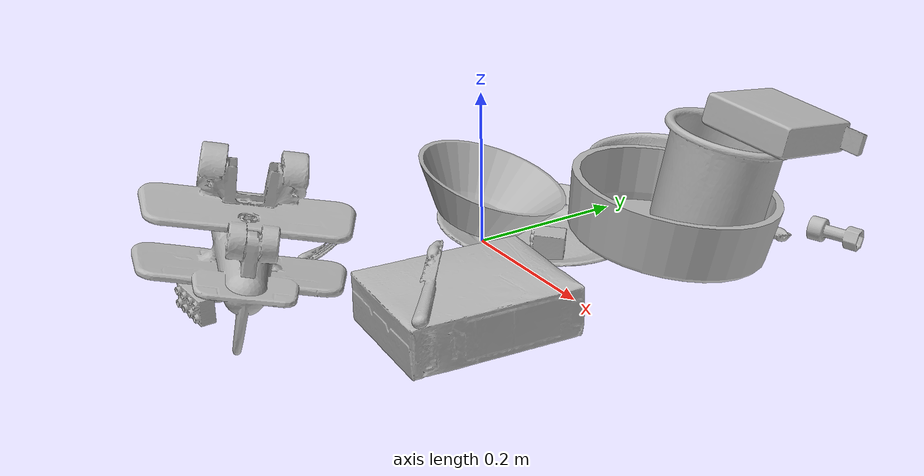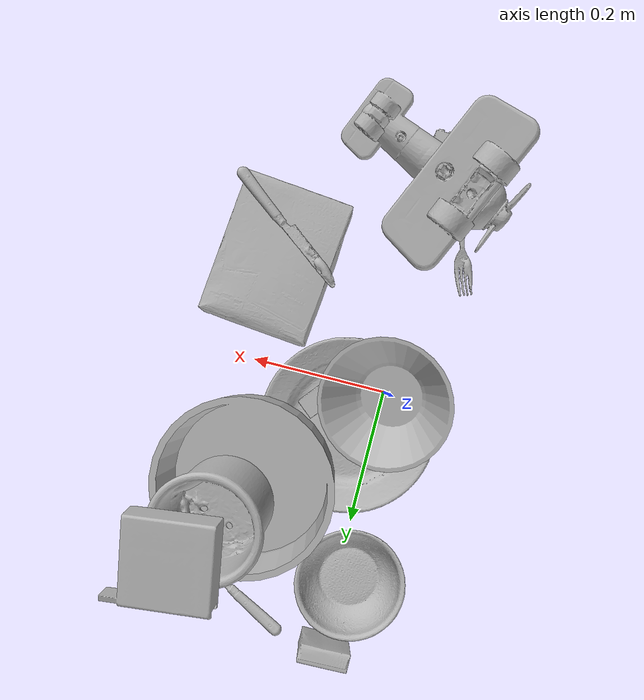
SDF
<sdf version="1.4">
  <world name="default">
    <light name="light1" type="point">
      <pose>0 0 1 0 0 0</pose>
      <diffuse>3 3 3 1</diffuse>
      <specular>3 3 3 1</specular>
    </light>
    <light name="light2" type="point">
      <pose>0 0.5 2 0 0 0</pose>
      <diffuse>1 1 1 1</diffuse>
      <specular>1 1 1 1</specular>
    </light>
    <light name="light3" type="point">
      <pose>0 0.5 2 0 0 0</pose>
      <diffuse>3 3 3 1</diffuse>
      <specular>3 3 3 1</specular>
    </light>
    <scene>
      <ambient>0.7 0.7 0.7</ambient>
    </scene>
    <model name="plate1">
      <link name="link_plate1">
        <collision name="default">
          <geometry>
            <mesh>
              <uri>model://plate/collision_meshes/collision.obj</uri>
              <scale>1.0 1.0 1.0</scale>
            </mesh>
          </geometry>
          <surface>
            <friction>
              <ode>
                <mu>0.5</mu>
                <mu2>0.5</mu2>
              </ode>
            </friction>
          <contact>
        <ode>
            <max_vel>0</max_vel>
            <min_depth>0.0001</min_depth>
            <kp>1e8</kp>
        </ode>
    </contact></surface>
        </collision>
        <visual name="default">
          <geometry>
            <mesh>
              <uri>model://plate/visual_meshes/visual.dae</uri>
              <scale>1.0 1.0 1.0</scale>
            </mesh>
          </geometry>
        </visual>
        <inertial>
          <mass>0.1516857147216797</mass>
          <pose>-0.0006044649053364992 0.00027825761935673654 -0.0010561972158029675 0.002218765199568956 -0.003225488596237322 0.4526153800388047</pose>
          <inertia>
            <ixx>0.00070958876</ixx>
            <iyy>0.0007028018</iyy>
            <izz>0.00138785</izz>
            <ixy>0</ixy>
            <ixz>0</ixz>
            <iyz>0</iyz>
          </inertia>
        </inertial>
      </link>
      <pose>0.04005948826670647 0.059680063277482986 0.01837826706469059 0.013791375002708607 0.06813879909102033 1.2415685722663798</pose>
    </model>
    <model name="plate2">
      <link name="link_plate2">
        <collision name="default">
          <geometry>
            <mesh>
              <uri>model://pan_tefal/collision_meshes/collision.obj</uri>
              <scale>1.0 1.0 1.0</scale>
            </mesh>
          </geometry>
          <surface>
            <friction>
              <ode>
                <mu>0.5</mu>
                <mu2>0.5</mu2>
              </ode>
            </friction>
          <contact>
        <ode>
            <max_vel>0</max_vel>
            <min_depth>0.0001</min_depth>
            <kp>1e8</kp>
        </ode>
    </contact></surface>
        </collision>
        <visual name="default">
          <geometry>
            <mesh>
              <uri>model://pan_tefal/visual_meshes/visual.dae</uri>
              <scale>1.0 1.0 1.0</scale>
            </mesh>
          </geometry>
        </visual>
        <inertial>
          <mass>1.0862284898757935</mass>
          <pose>-0.00018001910939347 3.2794348953757435e-05 -0.00851493515074253 0.0008190334899032376 -0.0003301482999058744 -0.3318501395419688</pose>
          <inertia>
            <ixx>0.0074981838</ixx>
            <iyy>0.007546525</iyy>
            <izz>0.013802713</izz>
            <ixy>0</ixy>
            <ixz>0</ixz>
            <iyz>0</iyz>
          </inertia>
        </inertial>
      </link>
      <pose>0.16239653527736664 0.17529895901679993 0.056534070521593094 -0.08781796131860266 0.14150609278339224 0.5350767931370202</pose>
    </model>
    <model name="bowl1">
      <link name="link_bowl1">
        <collision name="default">
          <geometry>
            <mesh>
              <uri>model://bowl_a/collision_meshes/collision.obj</uri>
              <scale>1.0 1.0 1.0</scale>
            </mesh>
          </geometry>
          <surface>
            <friction>
              <ode>
                <mu>0.5</mu>
                <mu2>0.5</mu2>
              </ode>
            </friction>
          <contact>
        <ode>
            <max_vel>0</max_vel>
            <min_depth>0.0001</min_depth>
            <kp>1e8</kp>
        </ode>
    </contact></surface>
        </collision>
        <visual name="default">
          <geometry>
            <mesh>
              <uri>model://bowl_a/visual_meshes/visual.dae</uri>
              <scale>1.0 1.0 1.0</scale>
            </mesh>
          </geometry>
        </visual>
        <inertial>
          <mass>0.23323877155780792</mass>
          <pose>0.0002786752884276211 4.7312129026977345e-05 -0.001376529224216938 -0.000980538139416196 -0.00109382495954127 -0.19123674059098103</pose>
          <inertia>
            <ixx>0.0006640416</ixx>
            <iyy>0.0006681184</iyy>
            <izz>0.0011810234</izz>
            <ixy>0</ixy>
            <ixz>0</ixz>
            <iyz>0</iyz>
          </inertia>
        </inertial>
      </link>
      <pose>-0.006078058388084173 0.009744756855070591 0.05626294016838074 0.15697373763869726 -0.2757705010686803 -2.765850158762176</pose>
    </model>
    <model name="bowl2">
      <link name="link_bowl2">
        <collision name="default">
          <geometry>
            <mesh>
              <uri>model://bowl/collision_meshes/collision.obj</uri>
              <scale>1.0 1.0 1.0</scale>
            </mesh>
          </geometry>
          <surface>
            <friction>
              <ode>
                <mu>0.5</mu>
                <mu2>0.5</mu2>
              </ode>
            </friction>
          <contact>
        <ode>
            <max_vel>0</max_vel>
            <min_depth>0.0001</min_depth>
            <kp>1e8</kp>
        </ode>
    </contact></surface>
        </collision>
        <visual name="default">
          <geometry>
            <mesh>
              <uri>model://bowl/visual_meshes/visual.dae</uri>
              <scale>1.0 1.0 1.0</scale>
            </mesh>
          </geometry>
        </visual>
        <inertial>
          <mass>0.08787161856889725</mass>
          <pose>0.00020445531117729843 -0.0010302038863301277 -0.0008042651461437345 -0.015764035308279474 0.014546860922519275 0.7140443952173783</pose>
          <inertia>
            <ixx>0.00020184812</ixx>
            <iyy>0.00019733804</iyy>
            <izz>0.00033957793</izz>
            <ixy>0</ixy>
            <ixz>0</ixz>
            <iyz>0</iyz>
          </inertia>
        </inertial>
      </link>
      <pose>-0.01883745566010475 0.28219735622406006 0.02778000384569168 -1.285341958964754e-07 9.011013879316535e-08 1.8626223135131015</pose>
    </model>
    <model name="silverware1">
      <link name="link_silverware1">
        <collision name="default">
          <geometry>
            <mesh>
              <uri>model://spoon/collision_meshes/collision.obj</uri>
              <scale>1.0 1.0 1.0</scale>
            </mesh>
          </geometry>
          <surface>
            <friction>
              <ode>
                <mu>0.5</mu>
                <mu2>0.5</mu2>
              </ode>
            </friction>
          <contact>
        <ode>
            <max_vel>0</max_vel>
            <min_depth>0.0001</min_depth>
            <kp>1e8</kp>
        </ode>
    </contact></surface>
        </collision>
        <visual name="default">
          <geometry>
            <mesh>
              <uri>model://spoon/visual_meshes/visual.dae</uri>
              <scale>1.0 1.0 1.0</scale>
            </mesh>
          </geometry>
        </visual>
        <inertial>
          <mass>0.028818774968385696</mass>
          <pose>-0.0055263228714466095 -0.0016034181462600827 -0.0007271657814271748 0.03521556092832266 -0.039065843026344464 0.006150610888934851</pose>
          <inertia>
            <ixx>1.6029475e-06</ixx>
            <iyy>0.0001096545</iyy>
            <izz>0.000110445</izz>
            <ixy>0</ixy>
            <ixz>0</ixz>
            <iyz>0</iyz>
          </inertia>
        </inertial>
      </link>
      <pose>0.14920932054519653 0.3440118730068207 0.00838526338338852 0.006731647057795463 0.02689299424970009 -0.48799114237414154</pose>
    </model>
    <model name="box1">
      <link name="link_box1">
        <collision name="default">
          <geometry>
            <mesh>
              <uri>model://cracker_box/collision_meshes/collision.obj</uri>
              <scale>1.0 1.0 1.0</scale>
            </mesh>
          </geometry>
          <surface>
            <friction>
              <ode>
                <mu>0.5</mu>
                <mu2>0.5</mu2>
              </ode>
            </friction>
          <contact>
        <ode>
            <max_vel>0</max_vel>
            <min_depth>0.0001</min_depth>
            <kp>1e8</kp>
        </ode>
    </contact></surface>
        </collision>
        <visual name="default">
          <geometry>
            <mesh>
              <uri>model://cracker_box/visual_meshes/visual.dae</uri>
              <scale>1.0 1.0 1.0</scale>
            </mesh>
          </geometry>
        </visual>
        <inertial>
          <mass>2.9781224727630615</mass>
          <pose>0.0009464174509048462 0.00025434247800149024 -0.0017029534792527556 -0.0003162077703261406 -0.01110649239447325 0.0025467938390949236</pose>
          <inertia>
            <ixx>0.007575013</ixx>
            <iyy>0.012507835</iyy>
            <izz>0.017849829</izz>
            <ixy>0</ixy>
            <ixz>0</ixz>
            <iyz>0</iyz>
          </inertia>
        </inertial>
      </link>
      <pose>0.2006835639476776 -0.14861592650413513 0.03553140163421631 3.1372011300454057 -0.016543792487366465 1.4763522759395904</pose>
    </model>
    <model name="box2">
      <link name="link_box2">
        <collision name="default">
          <geometry>
            <mesh>
              <uri>model://gelatin_box/collision_meshes/collision.obj</uri>
              <scale>1.0 1.0 1.0</scale>
            </mesh>
          </geometry>
          <surface>
            <friction>
              <ode>
                <mu>0.5</mu>
                <mu2>0.5</mu2>
              </ode>
            </friction>
          <contact>
        <ode>
            <max_vel>0</max_vel>
            <min_depth>0.0001</min_depth>
            <kp>1e8</kp>
        </ode>
    </contact></surface>
        </collision>
        <visual name="default">
          <geometry>
            <mesh>
              <uri>model://gelatin_box/visual_meshes/visual.dae</uri>
              <scale>1.0 1.0 1.0</scale>
            </mesh>
          </geometry>
        </visual>
        <inertial>
          <mass>0.16266882419586182</mass>
          <pose>0.0004319618456065655 0.00011156871914863586 -0.0003640321083366871 -0.0010503720968416132 -0.004755819155016646 0.016440559472150423</pose>
          <inertia>
            <ixx>0.00011483092</ixx>
            <iyy>8.202313e-05</iyy>
            <izz>0.00017479825</izz>
            <ixy>0</ixy>
            <ixz>0</ixz>
            <iyz>0</iyz>
          </inertia>
        </inertial>
      </link>
      <pose>-0.005520241800695658 0.3823469877243042 0.04482681676745415 1.5930063638369734 -0.00013869462413796643 0.01242433281920513</pose>
    </model>
    <model name="cup1">
      <link name="link_cup1">
        <collision name="default">
          <geometry>
            <mesh>
              <uri>model://f_cups/collision_meshes/collision.obj</uri>
              <scale>2.0 2.0 2.0</scale>
            </mesh>
          </geometry>
          <surface>
            <friction>
              <ode>
                <mu>0.5</mu>
                <mu2>0.5</mu2>
              </ode>
            </friction>
          <contact>
        <ode>
            <max_vel>0</max_vel>
            <min_depth>0.0001</min_depth>
            <kp>1e8</kp>
        </ode>
    </contact></surface>
        </collision>
        <visual name="default">
          <geometry>
            <mesh>
              <uri>model://f_cups/visual_meshes/visual.dae</uri>
              <scale>2.0 2.0 2.0</scale>
            </mesh>
          </geometry>
        </visual>
        <inertial>
          <mass>0.6683602333068848</mass>
          <pose>-0.006342936307191849 -0.0012480152072384953 -0.0073110745288431644 0.7862253042657107 -0.260793604503958 -0.18237387444081576</pose>
          <inertia>
            <ixx>0.0025131067</ixx>
            <iyy>0.0026362767</iyy>
            <izz>0.0027444381</izz>
            <ixy>0</ixy>
            <ixz>0</ixz>
            <iyz>0</iyz>
          </inertia>
        </inertial>
      </link>
      <pose>0.18858842551708221 0.22123947739601135 0.09264049679040909 0.1849624953609756 0.11558961907350343 2.1612096462004193</pose>
    </model>
    <model name="silverware2">
      <link name="link_silverware2">
        <collision name="default">
          <geometry>
            <mesh>
              <uri>model://knife/collision_meshes/collision.obj</uri>
              <scale>1.0 1.0 1.0</scale>
            </mesh>
          </geometry>
          <surface>
            <friction>
              <ode>
                <mu>0.5</mu>
                <mu2>0.5</mu2>
              </ode>
            </friction>
          <contact>
        <ode>
            <max_vel>0</max_vel>
            <min_depth>0.0001</min_depth>
            <kp>1e8</kp>
        </ode>
    </contact></surface>
        </collision>
        <visual name="default">
          <geometry>
            <mesh>
              <uri>model://knife/visual_meshes/visual.dae</uri>
              <scale>1.0 1.0 1.0</scale>
            </mesh>
          </geometry>
        </visual>
        <inertial>
          <mass>0.03087119571864605</mass>
          <pose>-0.023785250261425972 0.0015275123296305537 5.062009586254135e-05 0.07305987484925712 0.017248420899959087 -0.007409824084002247</pose>
          <inertia>
            <ixx>8.762499e-07</ixx>
            <iyy>0.000118602155</iyy>
            <izz>0.00011888435</izz>
            <ixy>0</ixy>
            <ixz>0</ixz>
            <iyz>0</iyz>
          </inertia>
        </inertial>
      </link>
      <pose>0.19401729106903076 -0.19444681704044342 0.07564239948987961 2.8149752700834982 0.021602348509668464 2.5036397601950324</pose>
    </model>
    <model name="silverware3">
      <link name="link_silverware3">
        <collision name="default">
          <geometry>
            <mesh>
              <uri>model://fork/collision_meshes/collision.obj</uri>
              <scale>1.0 1.0 1.0</scale>
            </mesh>
          </geometry>
          <surface>
            <friction>
              <ode>
                <mu>0.5</mu>
                <mu2>0.5</mu2>
              </ode>
            </friction>
          <contact>
        <ode>
            <max_vel>0</max_vel>
            <min_depth>0.0001</min_depth>
            <kp>1e8</kp>
        </ode>
    </contact></surface>
        </collision>
        <visual name="default">
          <geometry>
            <mesh>
              <uri>model://fork/visual_meshes/visual.dae</uri>
              <scale>1.0 1.0 1.0</scale>
            </mesh>
          </geometry>
        </visual>
        <inertial>
          <mass>0.015284496359527111</mass>
          <pose>-0.02957003004848957 0.00046588233090005815 0.00032188600744120777 -0.013550803329795006 -0.010977829430356707 0.014453895799763906</pose>
          <inertia>
            <ixx>5.358081e-07</ixx>
            <iyy>3.9903432e-05</iyy>
            <izz>4.0143095e-05</izz>
            <ixy>0</ixy>
            <ixz>0</ixz>
            <iyz>0</iyz>
          </inertia>
        </inertial>
      </link>
      <pose>-0.05277019366621971 -0.2637474536895752 0.0057506440207362175 -0.18944292930419165 0.024106669674343783 1.862483676323204</pose>
    </model>
    <model name="toy1">
      <link name="link_toy1">
        <collision name="default">
          <geometry>
            <mesh>
              <uri>model://c_toy_airplane/collision_meshes/collision.obj</uri>
              <scale>1.0 1.0 1.0</scale>
            </mesh>
          </geometry>
          <surface>
            <friction>
              <ode>
                <mu>0.5</mu>
                <mu2>0.5</mu2>
              </ode>
            </friction>
          <contact>
        <ode>
            <max_vel>0</max_vel>
            <min_depth>0.0001</min_depth>
            <kp>1e8</kp>
        </ode>
    </contact></surface>
        </collision>
        <visual name="default">
          <geometry>
            <mesh>
              <uri>model://c_toy_airplane/visual_meshes/visual.dae</uri>
              <scale>1.0 1.0 1.0</scale>
            </mesh>
          </geometry>
        </visual>
        <inertial>
          <mass>0.014899278059601784</mass>
          <pose>-0.0002302424400113523 -4.428088118402229e-07 -0.006080529186874628 -0.00619304524108313 -0.016797611161866028 0.7655100812139064</pose>
          <inertia>
            <ixx>6.841441e-06</ixx>
            <iyy>6.822133e-06</iyy>
            <izz>1.6062353e-06</izz>
            <ixy>0</ixy>
            <ixz>0</ixz>
            <iyz>0</iyz>
          </inertia>
        </inertial>
      </link>
      <pose>0.2565126121044159 0.3678109347820282 0.014615986496210098 1.6417596857492345 0.7666127821985449 2.02828439707302</pose>
    </model>
    <model name="toy2">
      <link name="link_toy2">
        <collision name="default">
          <geometry>
            <mesh>
              <uri>model://nine_hole_peg_test/collision_meshes/collision.obj</uri>
              <scale>1.0 1.0 1.0</scale>
            </mesh>
          </geometry>
          <surface>
            <friction>
              <ode>
                <mu>0.5</mu>
                <mu2>0.5</mu2>
              </ode>
            </friction>
          <contact>
        <ode>
            <max_vel>0</max_vel>
            <min_depth>0.0001</min_depth>
            <kp>1e8</kp>
        </ode>
    </contact></surface>
        </collision>
        <visual name="default">
          <geometry>
            <mesh>
              <uri>model://nine_hole_peg_test/visual_meshes/visual.dae</uri>
              <scale>1.0 1.0 1.0</scale>
            </mesh>
          </geometry>
        </visual>
        <inertial>
          <mass>0.8674170970916748</mass>
          <pose>-0.004617386031895876 -0.009647614322602749 2.6460689696250483e-05 -0.0014666783129250742 0.0007194188660534222 -0.6342410037611789</pose>
          <inertia>
            <ixx>0.0013563493</ixx>
            <iyy>0.0012664091</iyy>
            <izz>0.0023767245</izz>
            <ixy>0</ixy>
            <ixz>0</ixz>
            <iyz>0</iyz>
          </inertia>
        </inertial>
      </link>
      <pose>0.2346186488866806 0.2865346372127533 0.17094145715236664 -3.038038278976307 0.1750175574168698 1.7223947696182396</pose>
    </model>
    <model name="toy3">
      <link name="link_toy3">
        <collision name="default">
          <geometry>
            <mesh>
              <uri>model://a_toy_airplane/collision_meshes/collision.obj</uri>
              <scale>1.0 1.0 1.0</scale>
            </mesh>
          </geometry>
          <surface>
            <friction>
              <ode>
                <mu>0.5</mu>
                <mu2>0.5</mu2>
              </ode>
            </friction>
          <contact>
        <ode>
            <max_vel>0</max_vel>
            <min_depth>0.0001</min_depth>
            <kp>1e8</kp>
        </ode>
    </contact></surface>
        </collision>
        <visual name="default">
          <geometry>
            <mesh>
              <uri>model://a_toy_airplane/visual_meshes/visual.dae</uri>
              <scale>1.0 1.0 1.0</scale>
            </mesh>
          </geometry>
        </visual>
        <inertial>
          <mass>1.0043106079101562</mass>
          <pose>0.02516508847475052 -0.003707321360707283 -0.0011962434509769082 -0.01201694293172648 -0.14663499629613377 0.0041490900747424425</pose>
          <inertia>
            <ixx>0.0036471337</ixx>
            <iyy>0.0053146123</iyy>
            <izz>0.0062227584</izz>
            <ixy>0</ixy>
            <ixz>0</ixz>
            <iyz>0</iyz>
          </inertia>
        </inertial>
      </link>
      <pose>0.018086612224578857 -0.32733994722366333 0.07371125370264053 -2.9532536307181614 -0.14906773892198788 2.686692677297832</pose>
    </model>
    <model name="toy4">
      <link name="link_toy4">
        <collision name="default">
          <geometry>
            <mesh>
              <uri>model://c_lego_duplo/collision_meshes/collision.obj</uri>
              <scale>1.0 1.0 1.0</scale>
            </mesh>
          </geometry>
          <surface>
            <friction>
              <ode>
                <mu>0.5</mu>
                <mu2>0.5</mu2>
              </ode>
            </friction>
          <contact>
        <ode>
            <max_vel>0</max_vel>
            <min_depth>0.0001</min_depth>
            <kp>1e8</kp>
        </ode>
    </contact></surface>
        </collision>
        <visual name="default">
          <geometry>
            <mesh>
              <uri>model://c_lego_duplo/visual_meshes/visual.dae</uri>
              <scale>1.0 1.0 1.0</scale>
            </mesh>
          </geometry>
        </visual>
        <inertial>
          <mass>0.019874408841133118</mass>
          <pose>0.0003164595691487193 0.0001946465636137873 0.0010453156428411603 -0.01152079101413275 0.005900072799474436 0.031100350485514378</pose>
          <inertia>
            <ixx>7.648045e-06</ixx>
            <iyy>2.443061e-06</iyy>
            <izz>8.937529e-06</izz>
            <ixy>0</ixy>
            <ixz>0</ixz>
            <iyz>0</iyz>
          </inertia>
        </inertial>
      </link>
      <pose>-0.009985905140638351 -0.38595253229141235 0.016251690685749054 2.0672610188530025 -1.544813016488143 -0.48518688441740704</pose>
    </model>
    <model name="toy5">
      <link name="link_toy5">
        <collision name="default">
          <geometry>
            <mesh>
              <uri>model://b_lego_duplo/collision_meshes/collision.obj</uri>
              <scale>1.0 1.0 1.0</scale>
            </mesh>
          </geometry>
          <surface>
            <friction>
              <ode>
                <mu>0.5</mu>
                <mu2>0.5</mu2>
              </ode>
            </friction>
          <contact>
        <ode>
            <max_vel>0</max_vel>
            <min_depth>0.0001</min_depth>
            <kp>1e8</kp>
        </ode>
    </contact></surface>
        </collision>
        <visual name="default">
          <geometry>
            <mesh>
              <uri>model://b_lego_duplo/visual_meshes/visual.dae</uri>
              <scale>1.0 1.0 1.0</scale>
            </mesh>
          </geometry>
        </visual>
        <inertial>
          <mass>0.031542204320430756</mass>
          <pose>-0.0001105302435462363 -9.152341590379365e-06 0.001929428894072771 -0.03749493031375769 -0.026354084635952003 0.4518990108557965</pose>
          <inertia>
            <ixx>6.4553496e-06</ixx>
            <iyy>6.4987444e-06</iyy>
            <izz>5.7515063e-06</izz>
            <ixy>0</ixy>
            <ixz>0</ixz>
            <iyz>0</iyz>
          </inertia>
        </inertial>
      </link>
      <pose>0.09400706738233566 0.0358242429792881 0.023899881169199944 0.16464386060448924 1.495639957539185 -2.0984335812604216</pose>
    </model>
  <physics type="ode">
      <max_contacts>50</max_contacts>
      <ode>
        <solver>
          <type>quick</type>
          <iters>75</iters>
        </solver>
        <constraints>
          <contact_max_correcting_vel>0</contact_max_correcting_vel>
          <contact_surface_layer>0</contact_surface_layer>
        </constraints>
      </ode>
    </physics></world>
</sdf>
